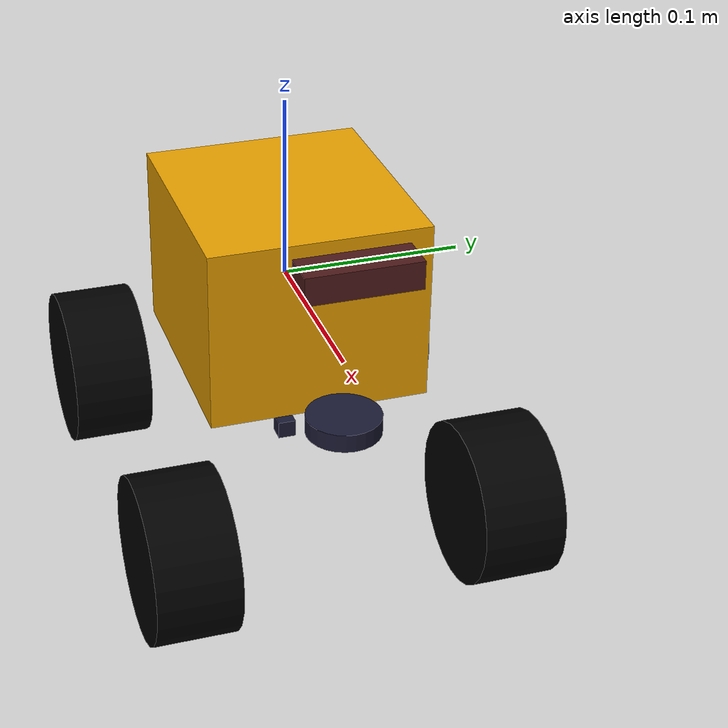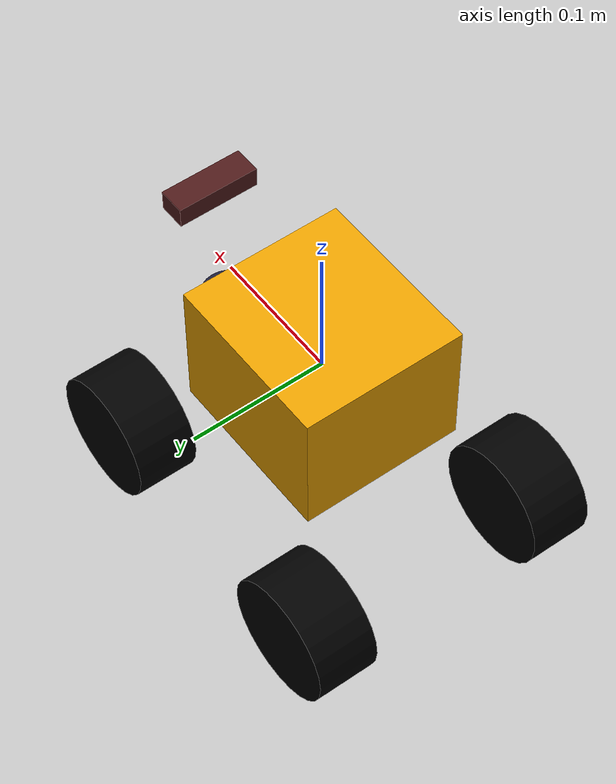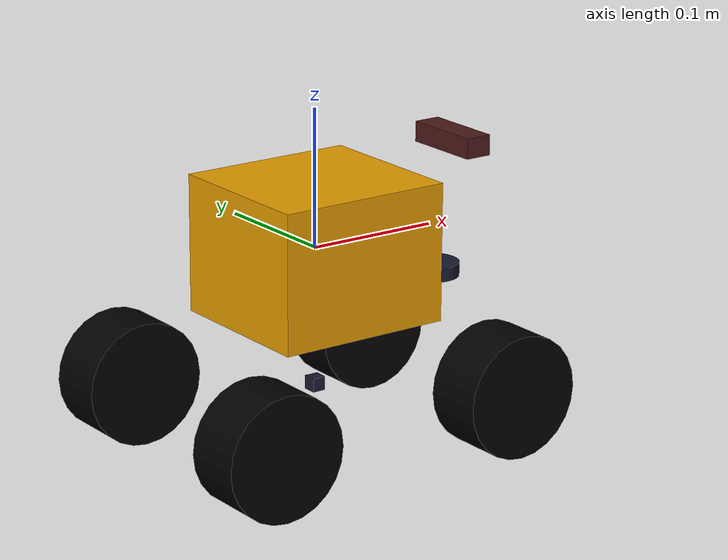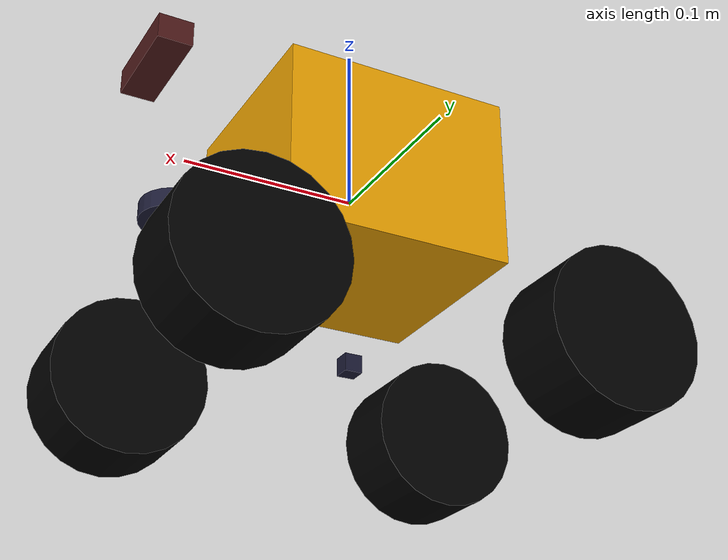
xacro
<?xml version="1.0"?>

<robot name="limo_four_diff" xmlns:xacro="http://ros.org/wiki/xacro">

    <xacro:include filename="$(find limo_description)/urdf/limo_xacro.xacro" />

    <!-- Variables -->
    <xacro:property name="M_PI" value="3.14159"/>

    <!-- Vehicle Geometries -->
    <xacro:property name="base_x_size" value="0.13" />
    <xacro:property name="base_y_size" value="0.12" />
    <xacro:property name="base_z_size" value="0.1" />

    <xacro:property name="wheelbase" value="0.2"/>
    <xacro:property name="track" value="0.13"/>
    <xacro:property name="wheel_vertical_offset" value="-0.10" />
    <xacro:property name="base_mass" value="2.1557"/>

    <xacro:property name="wheel_length" value="0.045" />
    <xacro:property name="wheel_radius" value="0.045" />

    <!-- Base link -->
    <link name="base_link">
        <visual>
            <!--origin xyz="0 0 -0.15" rpy="0 0 1.57" /-->
          <origin xyz="0 0 0" rpy="0 0 0" />
          <geometry>
              <box size="${base_x_size} ${base_y_size} ${base_z_size}"/>
          </geometry>
        </visual>
        <collision>
            <!--origin xyz="0 0 -0.15" rpy="0 0 1.57" /-->
            <origin xyz="0 0 0" rpy="0 0 0" />
          <geometry>
              <box size="${base_x_size} ${base_y_size} ${base_z_size}"/>
          </geometry>
        </collision>
        <inertial>
            <origin xyz="0.0 0.0 0.0" />
            <mass value="${base_mass}" />
            <inertia ixx="0.24" ixy="0" ixz="0"
                     iyy="0.96" iyz="0"
                     izz="0.96" />
        </inertial>
    </link>

    <xacro:limo_laser parent_prefix="base_link" frame_prefix="laser">
        <origin xyz="0.103 0 -0.034" rpy="0 0 0"/>
    </xacro:limo_laser>

    <xacro:limo_imu parent_prefix="base_link" frame_prefix="imu">
        <origin xyz="0.0 0 -0.1" rpy="0 0 0"/>
    </xacro:limo_imu>

    <xacro:limo_depth_camera parent_prefix="base_link" frame_prefix="depth_camera">
        <origin xyz="0.12 0 0.06" rpy="0 0 0"/>
    </xacro:limo_depth_camera>

    <xacro:limo_wheel parent_prefix="base_link" wheel_prefix="front_left" reflect="1">
        <origin xyz="${wheelbase/2} ${track/2} ${wheel_vertical_offset}" rpy="0 0  0" />
    </xacro:limo_wheel>

    <xacro:limo_wheel parent_prefix="base_link" wheel_prefix="front_right" reflect="-1">
        <origin xyz="${wheelbase/2} ${-track/2} ${wheel_vertical_offset}" rpy="${M_PI} 0 0" />
    </xacro:limo_wheel>

    <xacro:limo_wheel parent_prefix="base_link" wheel_prefix="rear_left" reflect="1">
        <origin xyz="${-wheelbase/2} ${track/2} ${wheel_vertical_offset}" rpy="0 0 0" />
    </xacro:limo_wheel>

    <xacro:limo_wheel parent_prefix="base_link" wheel_prefix="rear_right" reflect="-1">
        <origin xyz="${-wheelbase/2} ${-track/2} ${wheel_vertical_offset}" rpy="${M_PI} 0 0" />
    </xacro:limo_wheel>
</robot>

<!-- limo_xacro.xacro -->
<robot name="limo_xacro" xmlns:xacro="http://ros.org/wiki/xacro">
  <xacro:macro name="limo_wheel" params="parent_prefix wheel_prefix reflect *joint_pose">

    <link name="${wheel_prefix}_wheel_link">
      <inertial>
        <origin xyz="0 0 0" rpy="0 0 0" />
        <mass value="0.5" />
        <inertia ixx="0.01055" ixy="0" ixz="0"
                 iyy="0.00075" iyz="0"
                 izz="0.01055" />
      </inertial>

      <visual>
        <origin xyz="0 ${wheel_length/2} 0" rpy="1.5708 0 0" />
        <geometry>
          <cylinder length="${wheel_length}" radius="${wheel_radius}" />
        </geometry>
        <material name="${wheel_prefix}_material">
          <color rgba="0.0 0.0 0.0 1" />
        </material>
      </visual>

      <collision>
        <!-- Cylinder is rotated so its axis matches joint axis (Y) -->
        <origin xyz="0 ${wheel_length/2} 0" rpy="1.5708 0 0" />
        <geometry>
          <cylinder length="0.05" radius="${wheel_radius}" />
        </geometry>
      </collision>
    </link>

    <joint name="${wheel_prefix}_wheel_joint" type="continuous">
      <parent link="${parent_prefix}" />
      <child link="${wheel_prefix}_wheel_link" />
      <xacro:insert_block name="joint_pose" />
      <!-- Wheel rotation axis in parent frame -->
      <axis xyz="0 ${reflect*1} 0" />
    </joint>
  </xacro:macro>

  <xacro:macro name="limo_laser" params="parent_prefix frame_prefix *joint_pose">
    <link name="${frame_prefix}_link">
      <inertial>
        <mass value="0.1" />
        <origin xyz="0 0 0" rpy="0 0 0" />
        <inertia ixx="1e-6" ixy="0" ixz="0"
                 iyy="1e-6" iyz="0"
                 izz="1e-6" />
      </inertial>

      <visual name="${frame_prefix}_visual">
        <origin xyz="0 0 0" rpy="0 0 0" />
        <geometry>
          <cylinder radius="0.02" length="0.01" />
        </geometry>
        <!-- URDF material is okay, but Webots may ignore it; harmless -->
        <material name="${frame_prefix}_material">
          <color rgba="0.1 0.1 0.2 1" />
        </material>
      </visual>

      <collision name="${frame_prefix}_collision">
        <origin xyz="0 0 0" rpy="0 0 0" />
        <geometry>
          <cylinder radius="0.032" length="0.016" />
        </geometry>
      </collision>
    </link>

    <joint type="fixed" name="${frame_prefix}_joint">
      <xacro:insert_block name="joint_pose" />
      <parent link="${parent_prefix}" />
      <child link="${frame_prefix}_link" />
    </joint>
  </xacro:macro>

  <xacro:macro name="limo_depth_camera" params="parent_prefix frame_prefix *joint_pose">
        <link name='${frame_prefix}_link'>
            <inertial>
                <mass value="0.1"/>
                <origin xyz="0.0 0 0" rpy="0 0 0"/>
                <inertia
                    ixx="1e-6" ixy="0" ixz="0"
                    iyy="1e-6" iyz="0"
                    izz="1e-6"/>
            </inertial>
            <visual name='depth_camera_visual'>
                <origin xyz="0 0 0" rpy="0 0 0"/>
                <geometry>
                    <box size="0.02 0.06 0.015"/>
                </geometry>
                <material name="${frame_prefix}_material">
                    <color rgba="0.3 0.1 0.1 1" />
                </material>
            </visual>
            <collision name='depth_camera_collision'>
                <origin xyz="0 0 0" rpy="0 0 0"/>
                <geometry>
                    <box size="0.02 0.06 0.015"/>
                </geometry>
            </collision>
        </link>
        <joint type="fixed" name="depth_camera_joint">
            <xacro:insert_block name="joint_pose"/>
            <child link="${frame_prefix}_link"/>
            <parent link="${parent_prefix}"/>
        </joint>
        <link name="depth_link"></link>
        <joint name="${frame_prefix}_to_camera_joint" type="fixed">
            <origin xyz="0 0 0" rpy="${-M_PI/2} 0 ${-M_PI/2} "/>
            <parent link="${frame_prefix}_link"/>
            <child link="depth_link"/>
        </joint>
    </xacro:macro>

  <!-- IMU Frame Macro       -->
  <!-- (Frame + visual only) -->
  <xacro:macro name="limo_imu" params="parent_prefix frame_prefix *joint_pose">

    <link name="${frame_prefix}_link">
      <inertial>
        <mass value="0.01" />
        <origin xyz="0 0 0" rpy="0 0 0" />
        <inertia ixx="1e-7" ixy="0" ixz="0"
                 iyy="1e-7" iyz="0"
                 izz="1e-7" />
      </inertial>

      <visual name="${frame_prefix}_visual">
        <origin xyz="0 0 0" rpy="0 0 0" />
        <geometry>
          <box size="0.01 0.01 0.01" />
        </geometry>
        <material name="${frame_prefix}_material">
          <color rgba="0.1 0.1 0.2 1" />
        </material>
      </visual>

      <collision name="${frame_prefix}_collision">
        <origin xyz="0 0 0" rpy="0 0 0" />
        <geometry>
          <box size="0.01 0.01 0.01" />
        </geometry>
      </collision>
    </link>

    <joint type="fixed" name="${frame_prefix}_joint">
      <xacro:insert_block name="joint_pose" />
      <parent link="${parent_prefix}" />
      <child link="${frame_prefix}_link" />
    </joint>

  </xacro:macro>

</robot>
